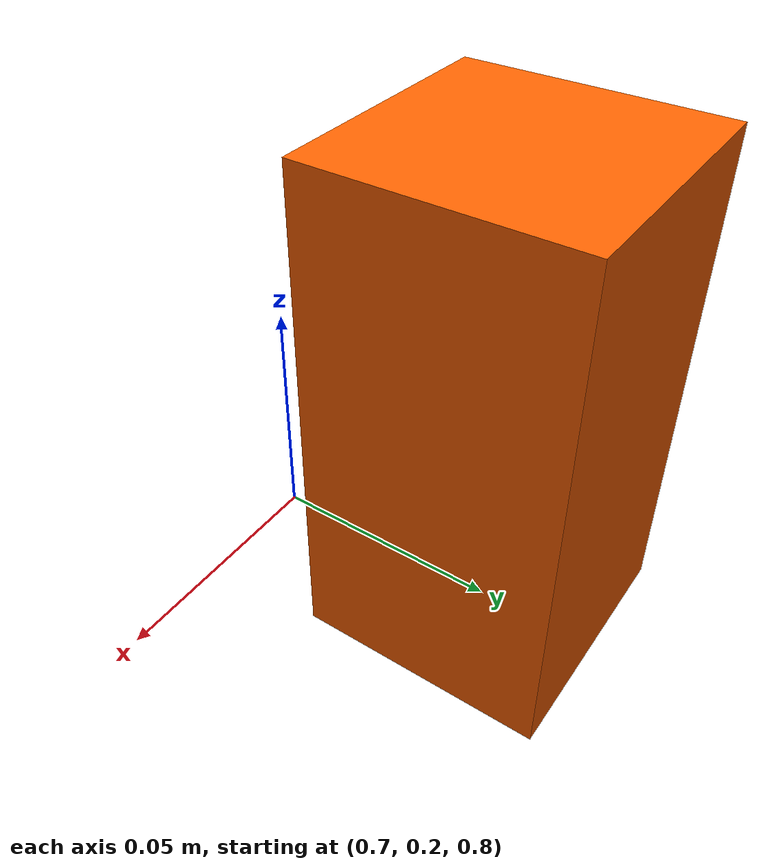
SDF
<?xml version="1.0" ?>
<sdf version="1.9">
  <model name="dynamic_obstacle">
    <pose>0.70 0.25 0.85 0 0 0</pose>
    <static>false</static>
    <link name="obstacle_link">
      <gravity>false</gravity>
      <kinematic>true</kinematic>
      <inertial>
        <mass>1.0</mass>
        <inertia>
          <ixx>0.001</ixx>
          <ixy>0.0</ixy>
          <ixz>0.0</ixz>
          <iyy>0.001</iyy>
          <iyz>0.0</iyz>
          <izz>0.001</izz>
        </inertia>
      </inertial>
      <collision name="collision">
        <geometry>
          <box>
            <size>0.05 0.05 0.10</size>
          </box>
        </geometry>
      </collision>
      <visual name="visual">
        <geometry>
          <box>
            <size>0.05 0.05 0.10</size>
          </box>
        </geometry>
        <material>
          <ambient>1.0 0.38 0.0 1.0</ambient>
          <diffuse>1.0 0.38 0.0 1.0</diffuse>
          <specular>0.5 0.5 0.5 1.0</specular>
        </material>
      </visual>
    </link>

    <plugin
      filename="libdeterministic_motion_system.so"
      name="ur5e_robotiq_sim::DeterministicMotion">
      <center_x>0.70</center_x>
      <center_z>0.85</center_z>
      <y_min>0.25</y_min>
      <y_max>0.45</y_max>
      <period>4.0</period>
    </plugin>

    <plugin
      filename="gz-sim-pose-publisher-system"
      name="gz::sim::systems::PosePublisher">
      <publish_link_pose>false</publish_link_pose>
      <publish_model_pose>true</publish_model_pose>
      <publish_visual_pose>false</publish_visual_pose>
      <publish_collision_pose>false</publish_collision_pose>
      <publish_sensor_pose>false</publish_sensor_pose>
      <publish_nested_model_pose>false</publish_nested_model_pose>
      <use_pose_vector_msg>false</use_pose_vector_msg>
      <update_frequency>50</update_frequency>
    </plugin>
  </model>
</sdf>
